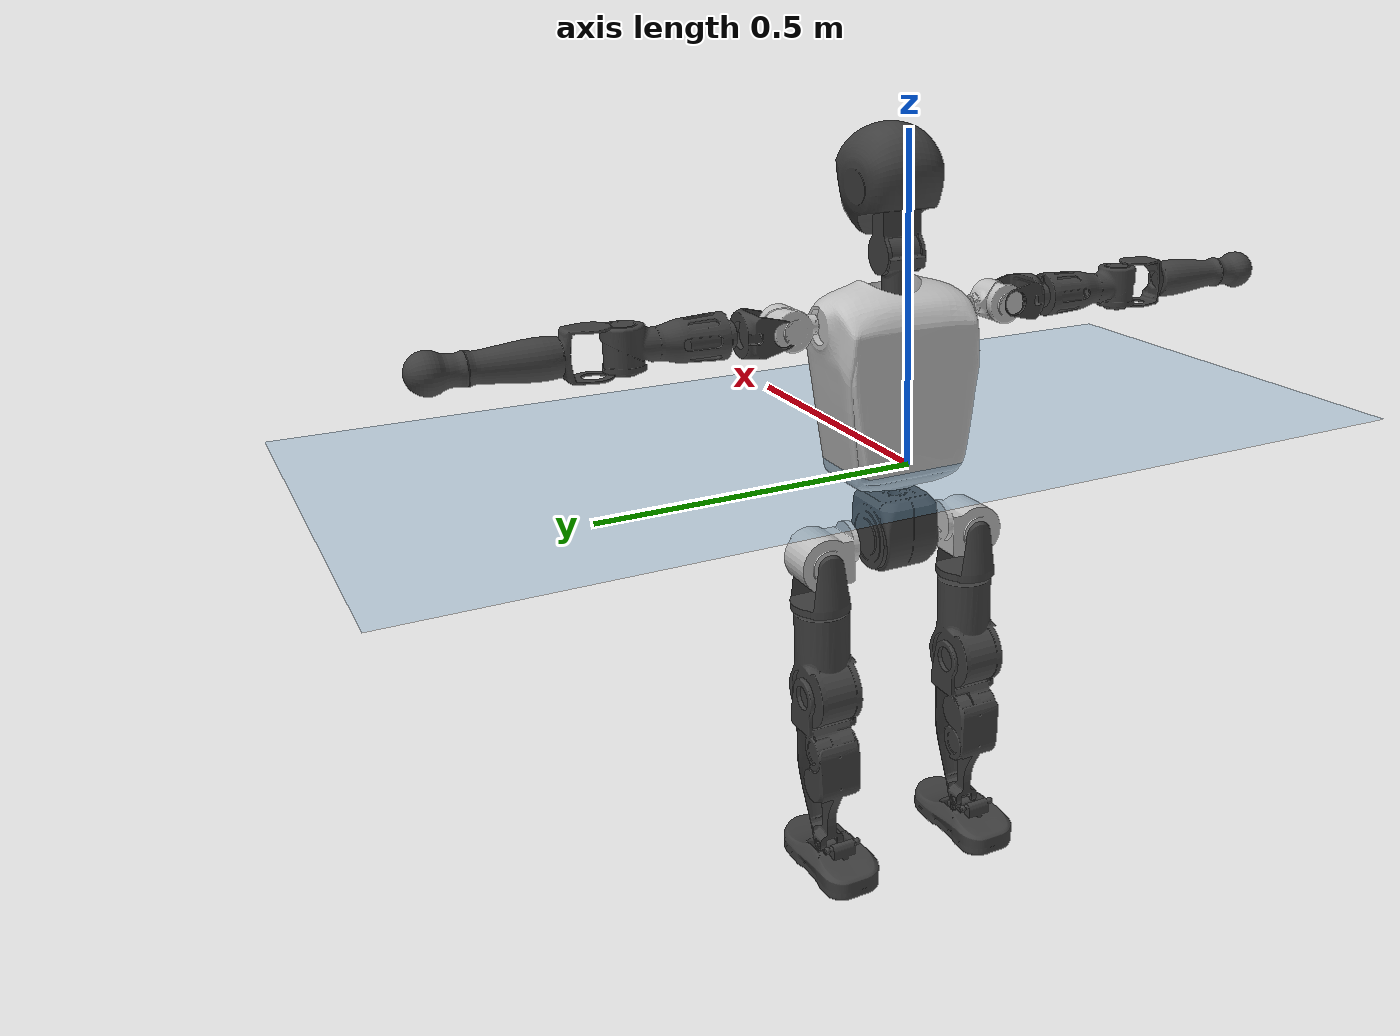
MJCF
<mujoco model="T1">
  <compiler angle="radian" assetdir="assets" balanceinertia="true" inertiafromgeom="false"/>

  <option timestep="0.005" density="1.2" viscosity="2e-05"/>

  <size nkey="1"/>

  <visual>
    <quality shadowsize="8192"/>
    <map shadowclip="0.5"/>
  </visual>

  <default>
    <default class="/">
      <joint armature="0.01" damping="0.01" frictionloss="0.1"/>
      <geom contype="0" conaffinity="0" group="1" solref="-1000 -80"/>
      <site size="0.01 0.005 0.005" group="5"/>
      <general forcelimited="true" biastype="affine" gainprm="25" biasprm="0 -25 -0.6"/>
      <default class="t1">
        <geom rgba="0.25 0.25 0.25 1"/>
        <default class="visual">
          <geom type="mesh" group="2"/>
        </default>
        <default class="collision">
          <geom group="3"/>
        </default>
        <default class="foot">
          <geom size="0.1115 0.05 0.015" type="box" condim="6" group="4" priority="1" solimp="0.015 1 0.015"/>
        </default>
        <default class="reward_collision_sphere">
          <geom group="5" rgba="1 0 0 1"/>
        </default>
      </default>
    </default>
  </default>

  <asset>
    <texture type="skybox" colorspace="auto" name="//unnamed_texture_0" builtin="gradient" rgb1="0.95 0.95 0.95" rgb2="0.95 0.95 0.95" width="100" height="600"/>
    <texture type="2d" colorspace="auto" name="texplane" builtin="checker" rgb1="0.345 0.575 0.748" rgb2="0.345 0.575 0.748" markrgb="1 1 1" width="512" height="512"/>
    <material name="MatPlane" class="/" texture="texplane" texuniform="true" texrepeat="2 2" specular="0.9"/>
    <mesh name="Trunk" class="/" file="Trunk.stl"/>
    <mesh name="H1" class="/" file="H1.stl"/>
    <mesh name="H2" class="/" file="H2.stl"/>
    <mesh name="AL1" class="/" file="AL1.stl"/>
    <mesh name="AL2" class="/" file="AL2.stl"/>
    <mesh name="AL3" class="/" file="AL3.stl"/>
    <mesh name="left_hand_link" class="/" file="left_hand_link.stl"/>
    <mesh name="AR1" class="/" file="AR1.stl"/>
    <mesh name="AR2" class="/" file="AR2.stl"/>
    <mesh name="AR3" class="/" file="AR3.stl"/>
    <mesh name="right_hand_link" class="/" file="right_hand_link.stl"/>
    <mesh name="Waist" class="/" file="Waist.stl"/>
    <mesh name="Hip_Pitch_Left" class="/" file="Hip_Pitch_Left.stl"/>
    <mesh name="Hip_Roll_Left" class="/" file="Hip_Roll_Left.stl"/>
    <mesh name="Hip_Yaw_Left" class="/" file="Hip_Yaw_Left.stl"/>
    <mesh name="Shank_Left" class="/" file="Shank_Left.stl"/>
    <mesh name="Ankle_Cross_Left" class="/" file="Ankle_Cross_Left.stl"/>
    <mesh name="left_foot_link" class="/" file="left_foot_link.stl"/>
    <mesh name="Hip_Pitch_Right" class="/" file="Hip_Pitch_Right.stl"/>
    <mesh name="Hip_Roll_Right" class="/" file="Hip_Roll_Right.stl"/>
    <mesh name="Hip_Yaw_Right" class="/" file="Hip_Yaw_Right.stl"/>
    <mesh name="Shank_Right" class="/" file="Shank_Right.stl"/>
    <mesh name="Ankle_Cross_Right" class="/" file="Ankle_Cross_Right.stl"/>
    <mesh name="right_foot_link" class="/" file="right_foot_link.stl"/>
  </asset>

  <worldbody>
    <geom name="floor" class="/" size="100 100 0.125" type="plane" group="0" material="MatPlane"/>
    <light name="toplight_shadow" class="/" pos="0 0 5" dir="0.0990148 0.0990148 -0.990148" type="directional" ambient="0.04 0.04 0.04" diffuse="0.55 0.55 0.55" specular="0.12 0.12 0.12"/>
    <light name="toplight_fill" class="/" pos="0 0 5" dir="0.0990148 0.0990148 -0.990148" type="directional" castshadow="false" ambient="0.04 0.04 0.04" diffuse="0.3 0.3 0.3" specular="0.08 0.08 0.08"/>
    <body name="trunk" childclass="t1" pos="0.000220987 -0.000566889 -0.000232834" quat="1 -0.000193608 2.53794e-05 0.000132119">
      <inertial pos="0.0413524 0.00206473 0.112705" quat="0.999804 0.00442832 -0.0177767 -0.00753044" mass="12.1257" diaginertia="0.0179245 0.257153 0.0690845"/>
      <joint name="//unnamed_joint_0" type="free" armature="0" damping="0" frictionloss="0"/>
      <geom name="//unnamed_geom_1" class="visual" rgba="0.76 0.76 0.76 1" mesh="Trunk"/>
      <geom name="//unnamed_geom_2" class="collision" size="0.0762524 0.10167 0.152505" pos="0.0434825 0 0.125663" type="box"/>
      <geom name="//unnamed_geom_3" class="reward_collision_sphere" size="0.11692" pos="0.0434825 0 0.104719"/>
      <geom name="//unnamed_geom_4" class="reward_collision_sphere" size="0.0152505" pos="0.0434825 0.108647 0"/>
      <geom name="//unnamed_geom_5" class="reward_collision_sphere" size="0.0152505" pos="0.0434825 -0.108647 0"/>
      <geom name="//unnamed_geom_6" class="reward_collision_sphere" size="0.0152505" pos="0.0434825 0.136767 0.188494"/>
      <geom name="//unnamed_geom_7" class="reward_collision_sphere" size="0.0152505" pos="0.0434825 -0.136767 0.188494"/>
      <site name="imu" pos="-0.0102625 -0.0073852 -0.00231706" size="0.010167"/>
      <camera name="track" pos="0 -2.5564 0" quat="0.707107 0.707107 0 0" mode="trackcom"/>
      <camera name="ego_camera" pos="0.0884144 0 0.439819" quat="-0.5 -0.5 0.5 0.5"/>
      <body name="H1" pos="0.0437384 -0.00293981 0.25688" quat="1 2.13203e-05 1.98703e-05 6.31386e-06">
        <inertial pos="-0.00128403 0.000285428 0.0611186" quat="0.756732 -0.0217334 0.000880266 0.653363" mass="0.45132" diaginertia="4.71249e-05 0.00074168 0.00018867"/>
        <joint name="AAHead_yaw" pos="0 0 0" axis="-0.00161555 -0.0037918 0.999992" range="-1.57503 1.51763" armature="0.010409" damping="0.0248684" frictionloss="0.0916909"/>
        <geom name="//unnamed_geom_8" class="visual" mesh="H1"/>
        <body name="H2" pos="-0.00132006 -0.000684295 0.061666" quat="1 1.83805e-05 -1.32134e-07 -2.62492e-05">
          <inertial pos="0.00464874 -0.00117662 0.103124" quat="0.990055 0.0946544 -0.0746529 -0.0725101" mass="0.661647" diaginertia="0.000407212 0.00657303 0.00224768"/>
          <joint name="Head_pitch" pos="0 0 0" axis="0.00213532 -0.999991 -0.0035679" stiffness="0.00151339" range="-1.22114 0.354277" armature="0.0100763" damping="0.0103795" frictionloss="0.0892376"/>
          <geom name="//unnamed_geom_9" class="visual" mesh="H2"/>
          <geom name="//unnamed_geom_10" class="collision" size="0.0813359" pos="0.00724708 0 0.115191"/>
          <geom name="//unnamed_geom_11" class="reward_collision_sphere" size="0.0915029" pos="0.0144942 0 0.104719"/>
        </body>
      </body>
      <body name="AL1" pos="0.0402047 0.135929 0.227949" quat="0.999999 0.00111471 0.00128012 0.000246143">
        <inertial pos="-0.000539633 0.0558733 -0.00134165" quat="0.50063 0.505995 -0.504372 0.488823" mass="0.555117" diaginertia="0.000274437 0.00455239 0.000365889"/>
        <joint name="Left_Shoulder_Pitch" pos="0 0 0" axis="3.1379e-05 1 -0.00020051" stiffness="0.00377157" range="-3.32334 1.27651" armature="0.0101271" damping="0.00500545" frictionloss="0.100738"/>
        <geom name="//unnamed_geom_12" class="visual" rgba="0.76 0.76 0.76 1" mesh="AL1"/>
        <body name="AL2" pos="0.000154569 0.0633961 -0.00242057" quat="0.999999 0.000418832 -0.000287449 -0.00102765">
          <inertial pos="0.00545808 0.0507551 0.00182134" quat="0.48368 0.511238 -0.48374 0.520273" mass="0.169941" diaginertia="8.01356e-05 0.0011716 0.000228477"/>
          <joint name="Left_Shoulder_Roll" pos="0 0 0" axis="-1 -0.000606907 0.000165705" range="-1.56886 1.73745" armature="0.00983925" damping="0.00726035" frictionloss="0.106104"/>
          <geom name="//unnamed_geom_13" class="visual" mesh="AL2"/>
          <body name="AL3" pos="0.000845119 0.0796256 0.00256674" quat="1 0.000104288 8.90264e-06 -0.000132351">
            <inertial pos="-0.00267955 0.108807 -0.00238967" quat="0.706945 0.707161 0.00437371 0.0115664" mass="1.14737" diaginertia="0.00267279 0.0446404 0.000806958"/>
            <joint name="Left_Elbow_Pitch" pos="0 0 0" axis="-0.00615713 -0.999977 0.00295701" stiffness="0.000145598" range="-2.29342 2.32107" armature="0.0108279" damping="0.0230275" frictionloss="0.0990655"/>
            <geom name="//unnamed_geom_14" class="visual" mesh="AL3"/>
            <geom name="//unnamed_geom_15" class="collision" size="0.030501 0.0762524" pos="0 0.0639099 0" quat="0.707105 0.707108 0 0" type="cylinder"/>
            <geom name="//unnamed_geom_16" class="reward_collision_sphere" size="0.0366011"/>
            <body name="left_hand_link" pos="0.00158017 0.190981 -0.00201101" quat="1 -0.000407722 -0.000186649 -0.000274965">
              <inertial pos="-0.000460334 0.141204 -1.37866e-06" quat="0.70755 0.706663 0.000286212 -0.00101049" mass="0.338748" diaginertia="0.00157122 0.0275734 0.00027382"/>
              <joint name="Left_Elbow_Yaw" pos="0 0 0" axis="-0.00308852 -0.0005805 0.999995" stiffness="0.00916395" range="-2.49623 0.00224988" armature="0.0104099" damping="0.00192528" frictionloss="0.11576"/>
              <geom name="//unnamed_geom_17" class="visual" mesh="left_hand_link"/>
              <geom name="//unnamed_geom_18" class="collision" size="0.030501 0.0889611" pos="0 0.166166 0" quat="0.707105 0.707108 0 0" type="cylinder"/>
              <geom name="//unnamed_geom_19" class="reward_collision_sphere" size="0.0508349"/>
              <geom name="//unnamed_geom_20" class="reward_collision_sphere" size="0.0355844" pos="0 0.140602 0"/>
              <geom name="//unnamed_geom_21" class="reward_collision_sphere" size="0.0355844" pos="0 0.274813 0"/>
            </body>
          </body>
        </body>
      </body>
      <body name="AR1" pos="0.0415279 -0.135239 0.227962" quat="0.999999 0.000326893 0.000938721 -0.000885564">
        <inertial pos="-0.00306852 -0.0577781 -0.00270622" quat="0.504467 0.50587 -0.501234 0.488235" mass="0.582623" diaginertia="0.000275497 0.00454382 0.000384661"/>
        <joint name="Right_Shoulder_Pitch" pos="0 0 0" axis="0.00146941 -0.999995 0.00266845" stiffness="0.00322621" range="-1.22331 3.29663" armature="0.00978118" damping="0" frictionloss="0.0892673"/>
        <geom name="//unnamed_geom_22" class="visual" rgba="0.76 0.76 0.76 1" mesh="AR1"/>
        <body name="AR2" pos="-0.00156937 -0.0600474 0.00138698" quat="1 -5.38747e-05 0.000133132 -0.000221158">
          <inertial pos="0.000644798 -0.050588 -0.000797538" quat="0.515977 0.48231 -0.504814 0.496293" mass="0.167637" diaginertia="8.27628e-05 0.00116906 0.000230244"/>
          <joint name="Right_Shoulder_Roll" pos="0 0 0" axis="-0.999997 0.00165306 0.00151945" stiffness="0.00382315" range="-1.74699 1.56118" armature="0.0100143" damping="0" frictionloss="0.0994244"/>
          <geom name="//unnamed_geom_23" class="visual" mesh="AR2"/>
          <body name="AR3" pos="-2.38792e-05 -0.0758066 -0.0011384" quat="0.999999 0.00082707 -0.000333408 -0.000838614">
            <inertial pos="-0.000291661 -0.108294 0.000669571" quat="0.702211 0.711909 -0.000397094 -0.00923661" mass="1.10094" diaginertia="0.00263634 0.0435428 0.000799535"/>
            <joint name="Right_Elbow_Pitch" pos="0 0 0" axis="0.00231842 0.999997 0.000281237" stiffness="0.00111403" range="-2.24957 2.26732" armature="0.0102921" damping="0.00891376" frictionloss="0.0967986"/>
            <geom name="//unnamed_geom_24" class="visual" mesh="AR3"/>
            <geom name="//unnamed_geom_25" class="collision" size="0.030501 0.0762524" pos="0 -0.0639099 0" quat="0.707105 0.707108 0 0" type="cylinder"/>
            <geom name="//unnamed_geom_26" class="reward_collision_sphere" size="0.0366011"/>
            <body name="right_hand_link" pos="-0.00177226 -0.185472 0.00196798" quat="0.999999 -0.000851225 0.000218321 0.000928334">
              <inertial pos="1.09791e-06 -0.137429 0.00138344" quat="0.708045 0.706159 0.00228967 0.00259847" mass="0.353374" diaginertia="0.00165318 0.0281435 0.00027233"/>
              <joint name="Right_Elbow_Yaw" pos="0 0 0" axis="-0.00160552 0.000342369 0.999999" stiffness="0.000340118" range="0.0450042 2.42754" armature="0.0105317" damping="0.00765526" frictionloss="0.114619"/>
              <geom name="//unnamed_geom_27" class="visual" mesh="right_hand_link"/>
              <geom name="//unnamed_geom_28" class="collision" size="0.030501 0.0889611" pos="0 -0.166166 0" quat="0.707105 0.707108 0 0" type="cylinder"/>
              <geom name="//unnamed_geom_29" class="reward_collision_sphere" size="0.0508349"/>
              <geom name="//unnamed_geom_30" class="reward_collision_sphere" size="0.0355844" pos="0 -0.140602 0"/>
              <geom name="//unnamed_geom_31" class="reward_collision_sphere" size="0.0355844" pos="0 -0.274813 0"/>
            </body>
          </body>
        </body>
      </body>
      <body name="Waist" pos="0.0417283 5.23278e-05 -0.122241" quat="1 -0.000488933 -5.61734e-05 -7.35587e-05">
        <inertial pos="-0.000375273 -0.001227 0.00665953" quat="0.98355 0.00225301 -0.180617 -0.00155801" mass="2.55181" diaginertia="0.00101594 0.0176187 0.00584837"/>
        <joint name="Waist" pos="0 0 0" axis="-0.00103613 0.00210742 0.999997" range="-1.60964 1.57612" armature="0.0113748" damping="0.0202921" frictionloss="0.101713"/>
        <geom name="//unnamed_geom_32" class="visual" mesh="Waist"/>
        <body name="Hip_Pitch_Left" pos="-0.000530316 0.136375 -0.00160234" quat="1 8.93281e-05 3.78715e-05 -0.000124745">
          <inertial pos="0.000588795 -0.00677293 -0.0165614" quat="0.973385 0.228182 0.0212791 -0.000993085" mass="1.11282" diaginertia="0.000361363 0.00516342 0.00158767"/>
          <joint name="Left_Hip_Pitch" pos="0 0 0" axis="-0.00222358 0.999997 0.000634151" stiffness="0.0047598" range="-1.79829 1.62298" armature="0.0113994" damping="0.0200071" frictionloss="0.104082"/>
          <geom name="//unnamed_geom_33" class="visual" rgba="0.76 0.76 0.76 1" mesh="Hip_Pitch_Left"/>
          <body name="Hip_Roll_Left" pos="0.00226867 -0.00242969 -0.0230662" quat="1 -0.00017887 6.44379e-05 -4.69499e-05">
            <inertial pos="-0.000786447 0.000423834 -0.0547357" quat="0.705064 -0.0172461 -0.00308549 0.708927" mass="0.394522" diaginertia="0.000338166 0.00532379 0.000650063"/>
            <joint name="Left_Hip_Roll" pos="0 0 0" axis="-0.999926 -0.00422584 0.0113799" stiffness="0.0103975" range="-1.5682 0.185599" armature="0.0114522" damping="0.0105851" frictionloss="0.0912768"/>
            <geom name="//unnamed_geom_34" class="visual" mesh="Hip_Roll_Left"/>
            <geom name="//unnamed_geom_35" class="reward_collision_sphere" size="0.0559184"/>
            <body name="Hip_Yaw_Left" pos="-0.00260527 -0.000939063 -0.0839641" quat="1 4.01696e-05 -0.000316684 -0.000439575">
              <inertial pos="-0.00783055 -0.000241328 -0.0926371" quat="0.696428 -0.0338702 -0.0365697 0.715893" mass="2.26808" diaginertia="0.00515254 0.0830986 0.00326637"/>
              <joint name="Left_Hip_Yaw" pos="0 0 0" axis="-0.00128003 0.00682682 -0.999976" stiffness="0.00194877" range="-1.05068 1.05962" armature="0.0103887" damping="0" frictionloss="0.101222"/>
              <geom name="//unnamed_geom_36" class="visual" mesh="Hip_Yaw_Left"/>
              <geom name="//unnamed_geom_37" class="collision" size="0.0508349 0.0813359" type="cylinder"/>
              <body name="Shank_Left" pos="-0.00777652 -0.000433187 -0.140355" quat="1 1.06021e-05 -0.000109097 -0.000387075">
                <inertial pos="-0.00355408 0.00320303 -0.127531" quat="0.997565 0.00144626 -0.0239962 0.0654634" mass="1.76825" diaginertia="0.00689618 0.119076 0.00231862"/>
                <joint name="Left_Knee_Pitch" pos="0 0 0" axis="-0.00100236 0.999995 0.0029795" stiffness="0.00239791" range="0.0291481 2.31286" armature="0.0103262" damping="0.0152906" frictionloss="0.105418"/>
                <geom name="//unnamed_geom_38" class="visual" mesh="Shank_Left"/>
                <geom name="//unnamed_geom_39" class="collision" size="0.0508349 0.0762524" pos="0 0 -0.125663" type="cylinder"/>
                <geom name="//unnamed_geom_40" class="reward_collision_sphere" size="0.0660854"/>
                <body name="Ankle_Cross_Left" pos="-9.69558e-05 -0.00109014 -0.290546" quat="1 -9.9291e-05 0.00038568 0.000237181">
                  <inertial pos="-0.00372949 0.00282208 -0.00642548" quat="0.455245 0.546324 0.546629 0.44213" mass="0.0803199" diaginertia="6.07004e-06 8.59071e-05 1.44886e-05"/>
                  <joint name="Left_Ankle_Pitch" pos="0 0 0" axis="-0.000840947 0.999999 0.00105093" range="-0.81691 0.330322" armature="0.00936572" damping="0.00877456" frictionloss="0.101369"/>
                  <geom name="//unnamed_geom_41" class="visual" mesh="Ankle_Cross_Left"/>
                  <body name="left_foot_link" pos="-0.000160001 -0.00250165 -0.0103529" quat="1 4.61206e-05 -0.000528914 -0.000333061">
                    <inertial pos="-0.00299965 0.000177109 -0.0123166" quat="-4.51877e-05 0.620721 5.2189e-05 0.784031" mass="0.691405" diaginertia="0.000503076 0.00806056 0.00272651"/>
                    <joint name="Left_Ankle_Roll" pos="0 0 0" axis="-0.999995 0.000478992 0.00303447" range="-0.440794 0.441486" armature="0.0101219" damping="0.0104044" frictionloss="0.101453"/>
                    <geom name="//unnamed_geom_42" class="visual" mesh="left_foot_link"/>
                    <geom name="left_foot" class="foot" size="0.106774 0.0476388 0.0147338" pos="0.00724708 0 -0.0157078"/>
                    <geom name="//unnamed_geom_44" class="reward_collision_sphere" size="0.0528683" pos="0.00724708 0 -0.0157078"/>
                    <geom name="//unnamed_geom_45" class="reward_collision_sphere" size="0.030501" pos="0.0688473 -0.0293986 -0.0157078"/>
                    <geom name="//unnamed_geom_46" class="reward_collision_sphere" size="0.030501" pos="-0.0507296 -0.0293986 -0.0157078"/>
                    <site name="left_foot" class="foot" pos="0.00724708 0 -0.0157078" size="0.010167"/>
                  </body>
                </body>
              </body>
            </body>
          </body>
        </body>
        <body name="Hip_Pitch_Right" pos="-0.000252017 -0.135612 0.00115631" quat="0.999999 0.00069378 -0.000801491 0.000502237">
          <inertial pos="-0.00252595 0.00955838 -0.0159457" quat="0.973396 -0.228557 0.0154386 -0.00475638" mass="1.10733" diaginertia="0.000372097 0.00517772 0.00158382"/>
          <joint name="Right_Hip_Pitch" pos="0 0 0" axis="0.00285918 -0.999995 0.00165333" range="-1.57384 1.7541" armature="0.00889826" damping="0.00953213" frictionloss="0.100372"/>
          <geom name="//unnamed_geom_47" class="visual" rgba="0.76 0.76 0.76 1" mesh="Hip_Pitch_Right"/>
          <body name="Hip_Roll_Right" pos="0.00183559 0.000382131 -0.0235053" quat="0.999999 0.000164042 -0.000684746 0.000770545">
            <inertial pos="0.00115632 0.000276653 -0.0537046" quat="0.707855 0.00397279 -0.0124127 0.706238" mass="0.399222" diaginertia="0.000349472 0.00532231 0.00064575"/>
            <joint name="Right_Hip_Roll" pos="0 0 0" axis="-0.999999 -0.000466928 -0.00149327" range="-0.160386 1.58228" armature="0.0101123" damping="0.0122329" frictionloss="0.110904"/>
            <geom name="//unnamed_geom_48" class="visual" mesh="Hip_Roll_Right"/>
            <geom name="//unnamed_geom_49" class="reward_collision_sphere" size="0.0559184"/>
            <body name="Hip_Yaw_Right" pos="-0.000837007 0.000255774 -0.0865876" quat="1 0.00058317 -0.000359295 -3.87896e-05">
              <inertial pos="-0.00424059 -0.00218443 -0.09602" quat="0.715094 -0.0321842 -0.0342628 0.697446" mass="2.24633" diaginertia="0.00512575 0.0883409 0.00316301"/>
              <joint name="Right_Hip_Yaw" pos="0 0 0" axis="0.00773986 0.00822553 -0.999936" range="-1.02245 0.99447" armature="0.0115726" damping="0.00232519" frictionloss="0.100889"/>
              <geom name="//unnamed_geom_50" class="visual" mesh="Hip_Yaw_Right"/>
              <geom name="//unnamed_geom_51" class="collision" size="0.0508349 0.0813359" type="cylinder"/>
              <body name="Shank_Right" pos="-0.0114068 0.000213815 -0.138295" quat="0.999999 0.000212459 0.00103075 0.000129746">
                <inertial pos="-0.00371734 -0.000386967 -0.131289" quat="0.999152 0.00279586 -0.0257189 -0.0320467" mass="1.92292" diaginertia="0.00724449 0.119262 0.00253766"/>
                <joint name="Right_Knee_Pitch" pos="0 0 0" axis="0.00629097 -0.999949 -0.00789151" stiffness="0.00640235" range="-2.2876 0.00690809" armature="0.0113312" damping="0.0178914" frictionloss="0.101617"/>
                <geom name="//unnamed_geom_52" class="visual" mesh="Shank_Right"/>
                <geom name="//unnamed_geom_53" class="collision" size="0.0508349 0.0762524" pos="0 0 -0.125663" type="cylinder"/>
                <geom name="//unnamed_geom_54" class="reward_collision_sphere" size="0.0660854"/>
                <body name="Ankle_Cross_Right" pos="-0.00163508 -0.000817678 -0.29349" quat="1 0.0001303 9.12254e-05 -0.000160277">
                  <inertial pos="-0.00317603 -0.00210697 -0.00824102" quat="0.440837 0.551752 0.552513 0.442676" mass="0.0787344" diaginertia="6.00952e-06 9.09663e-05 1.47694e-05"/>
                  <joint name="Right_Ankle_Pitch" pos="0 0 0" axis="0.000539531 -0.999966 -0.00819512" range="-0.406253 0.813654" armature="0.010089" damping="0.00537129" frictionloss="0.105659"/>
                  <geom name="//unnamed_geom_55" class="visual" mesh="Ankle_Cross_Right"/>
                  <body name="right_foot_link" pos="0.00255137 -0.000922143 -0.0146692" quat="1 1.40209e-05 5.91063e-05 -4.11295e-05">
                    <inertial pos="-0.00241478 0.000515131 -0.00990595" quat="0.000229245 0.620614 -0.000230622 0.784116" mass="0.719019" diaginertia="0.000542075 0.00787958 0.00274276"/>
                    <joint name="Right_Ankle_Roll" pos="0 0 0" axis="-0.999942 -0.00666891 0.00842148" range="-0.488464 0.439157" armature="0.00960882" damping="0" frictionloss="0.0962297"/>
                    <geom name="//unnamed_geom_56" class="visual" mesh="right_foot_link"/>
                    <geom name="right_foot" class="foot" size="0.107798 0.0447771 0.0146953" pos="0.00724708 0 -0.0157078"/>
                    <geom name="//unnamed_geom_58" class="reward_collision_sphere" size="0.0406679"/>
                    <geom name="//unnamed_geom_59" class="reward_collision_sphere" size="0.030501" pos="0.00724708 0 -0.0157078"/>
                    <geom name="//unnamed_geom_60" class="reward_collision_sphere" size="0.030501" pos="0.0688473 0.0293986 -0.0157078"/>
                    <geom name="//unnamed_geom_61" class="reward_collision_sphere" size="0.030501" pos="-0.0507296 0.0293986 -0.0157078"/>
                    <site name="right_foot" class="foot" pos="0.00724708 0 -0.0157078" size="0.010167"/>
                  </body>
                </body>
              </body>
            </body>
          </body>
        </body>
      </body>
    </body>
  </worldbody>

  <contact>
    <pair class="/" geom1="floor" geom2="left_foot" name="//unnamed_contact_0"/>
    <pair class="/" geom1="floor" geom2="right_foot" name="//unnamed_contact_1"/>
  </contact>

  <actuator>
    <general name="AAHead_yaw" class="/" joint="AAHead_yaw" forcerange="-7.05848 7.05848" gainprm="23.5691" biasprm="0 -23.5691 -0.60834"/>
    <general name="Head_pitch" class="/" joint="Head_pitch" forcerange="-7.1571 7.1571" gainprm="23.5691" biasprm="0 -23.5691 -0.60834"/>
    <general name="Left_Shoulder_Pitch" class="/" joint="Left_Shoulder_Pitch" forcerange="-16.679 16.679" gainprm="23.5691" biasprm="0 -23.5691 -0.60834"/>
    <general name="Left_Shoulder_Roll" class="/" joint="Left_Shoulder_Roll" forcerange="-18.11 18.11" gainprm="23.5691" biasprm="0 -23.5691 -0.60834"/>
    <general name="Left_Elbow_Pitch" class="/" joint="Left_Elbow_Pitch" forcerange="-18.1131 18.1131" gainprm="23.5691" biasprm="0 -23.5691 -0.60834"/>
    <general name="Left_Elbow_Yaw" class="/" joint="Left_Elbow_Yaw" forcerange="-18.3651 18.3651" gainprm="23.5691" biasprm="0 -23.5691 -0.60834"/>
    <general name="Right_Shoulder_Pitch" class="/" joint="Right_Shoulder_Pitch" forcerange="-18.6542 18.6542" gainprm="23.5691" biasprm="0 -23.5691 -0.60834"/>
    <general name="Right_Shoulder_Roll" class="/" joint="Right_Shoulder_Roll" forcerange="-16.9607 16.9607" gainprm="23.5691" biasprm="0 -23.5691 -0.60834"/>
    <general name="Right_Elbow_Pitch" class="/" joint="Right_Elbow_Pitch" forcerange="-20.0855 20.0855" gainprm="23.5691" biasprm="0 -23.5691 -0.60834"/>
    <general name="Right_Elbow_Yaw" class="/" joint="Right_Elbow_Yaw" forcerange="-18.4152 18.4152" gainprm="23.5691" biasprm="0 -23.5691 -0.60834"/>
    <general name="Waist" class="/" joint="Waist" forcerange="-31.5666 31.5666" gainprm="23.5691" biasprm="0 -23.5691 -0.60834"/>
    <general name="Left_Hip_Pitch" class="/" joint="Left_Hip_Pitch" forcerange="-46.3356 46.3356" gainprm="23.5691" biasprm="0 -23.5691 -0.60834"/>
    <general name="Left_Hip_Roll" class="/" joint="Left_Hip_Roll" forcerange="-33.6419 33.6419" gainprm="23.5691" biasprm="0 -23.5691 -0.60834"/>
    <general name="Left_Hip_Yaw" class="/" joint="Left_Hip_Yaw" forcerange="-27.3258 27.3258" gainprm="23.5691" biasprm="0 -23.5691 -0.60834"/>
    <general name="Left_Knee_Pitch" class="/" joint="Left_Knee_Pitch" forcerange="-58.1327 58.1327" gainprm="23.5691" biasprm="0 -23.5691 -0.60834"/>
    <general name="Left_Ankle_Pitch" class="/" joint="Left_Ankle_Pitch" forcerange="-19.9682 19.9682" gainprm="23.5691" biasprm="0 -23.5691 -0.60834"/>
    <general name="Left_Ankle_Roll" class="/" joint="Left_Ankle_Roll" forcerange="-16.8409 16.8409" gainprm="23.5691" biasprm="0 -23.5691 -0.60834"/>
    <general name="Right_Hip_Pitch" class="/" joint="Right_Hip_Pitch" forcerange="-45.8464 45.8464" gainprm="23.5691" biasprm="0 -23.5691 -0.60834"/>
    <general name="Right_Hip_Roll" class="/" joint="Right_Hip_Roll" forcerange="-31.0587 31.0587" gainprm="23.5691" biasprm="0 -23.5691 -0.60834"/>
    <general name="Right_Hip_Yaw" class="/" joint="Right_Hip_Yaw" forcerange="-33.3597 33.3597" gainprm="23.5691" biasprm="0 -23.5691 -0.60834"/>
    <general name="Right_Knee_Pitch" class="/" joint="Right_Knee_Pitch" forcerange="-61.3081 61.3081" gainprm="23.5691" biasprm="0 -23.5691 -0.60834"/>
    <general name="Right_Ankle_Pitch" class="/" joint="Right_Ankle_Pitch" forcerange="-21.0838 21.0838" gainprm="23.5691" biasprm="0 -23.5691 -0.60834"/>
    <general name="Right_Ankle_Roll" class="/" joint="Right_Ankle_Roll" forcerange="-14.0105 14.0105" gainprm="23.5691" biasprm="0 -23.5691 -0.60834"/>
  </actuator>

  <sensor>
    <gyro site="imu" name="imu_angular_velocity"/>
    <velocimeter site="imu" name="imu_linear_velocity"/>
    <framelinvel objtype="site" objname="left_foot" name="left_foot_global_linear_velocity"/>
    <framelinvel objtype="site" objname="right_foot" name="right_foot_global_linear_velocity"/>
  </sensor>

  <keyframe>
    <key name="home" qpos="0 0 0.6385 1 0 0 0 0 0 0 1.4 0 -0.4 0 -1.4 0 0.4 0 -0.4 0 0 0.8 -0.4 0 0.4 0 0 -0.8 0.4 0"/>
  </keyframe>
</mujoco>
